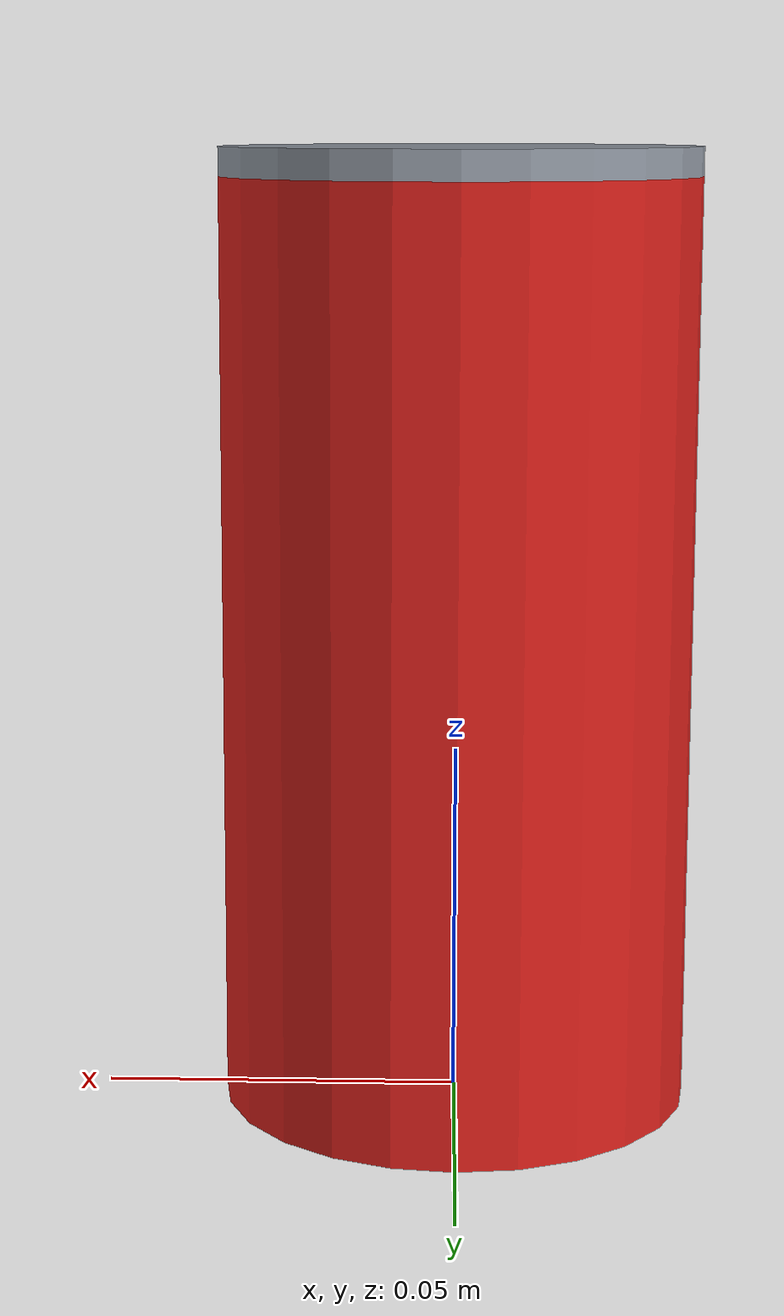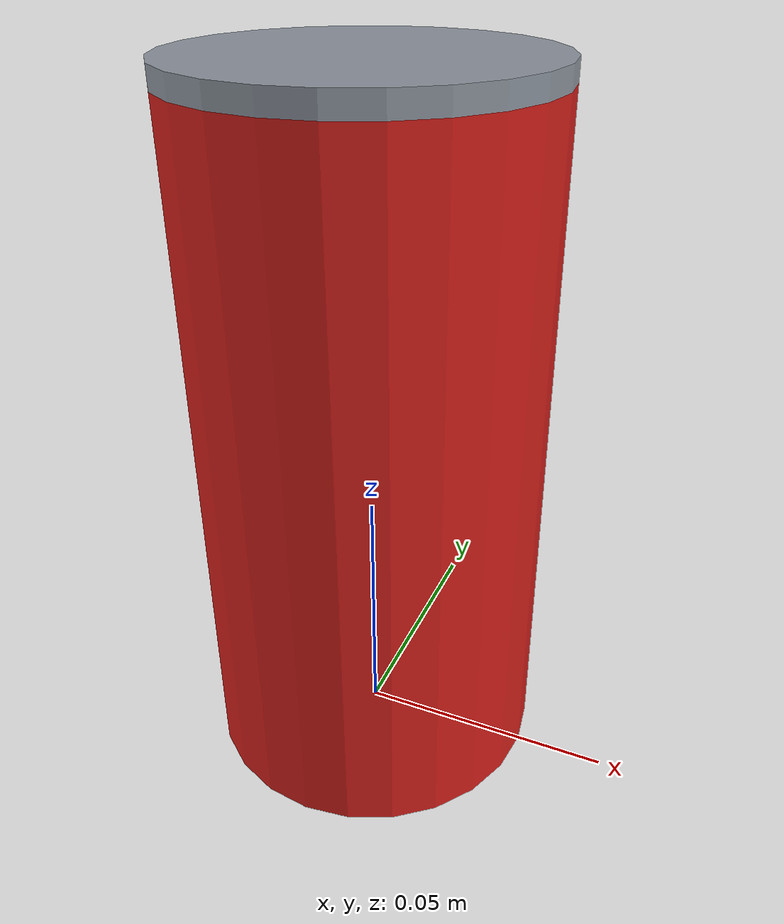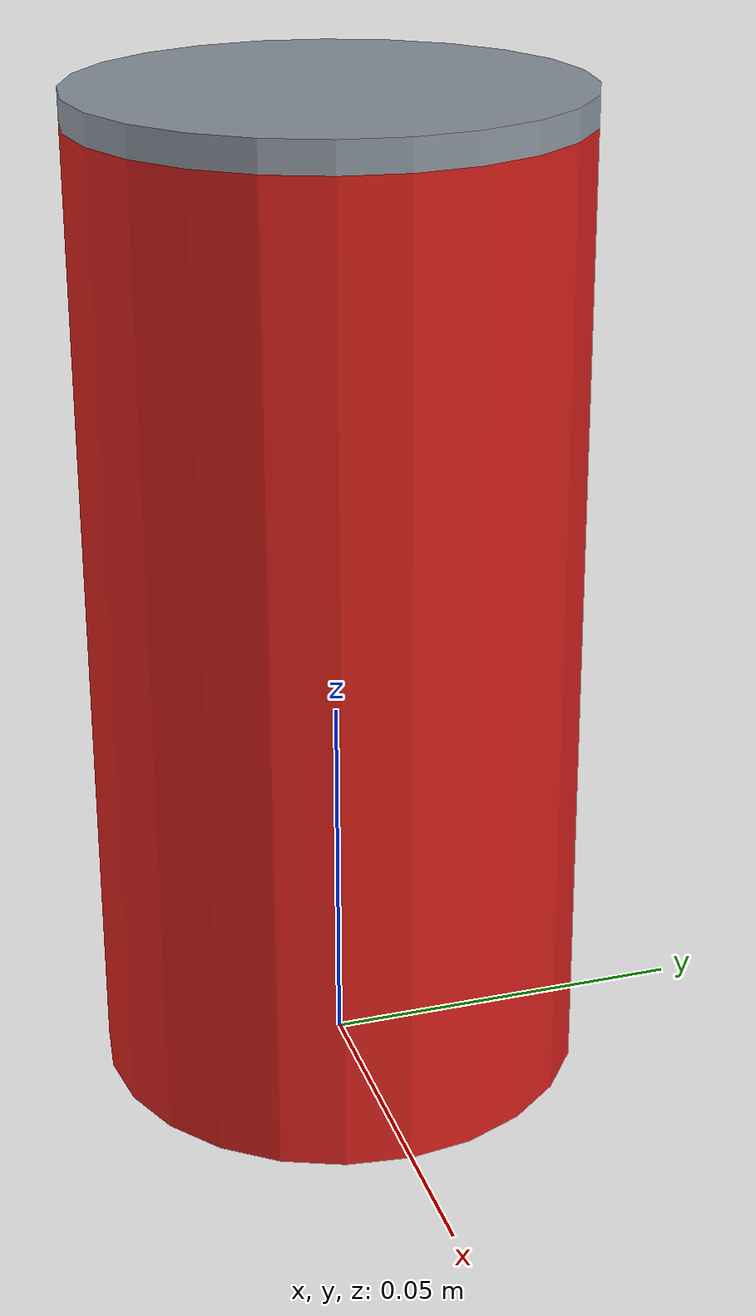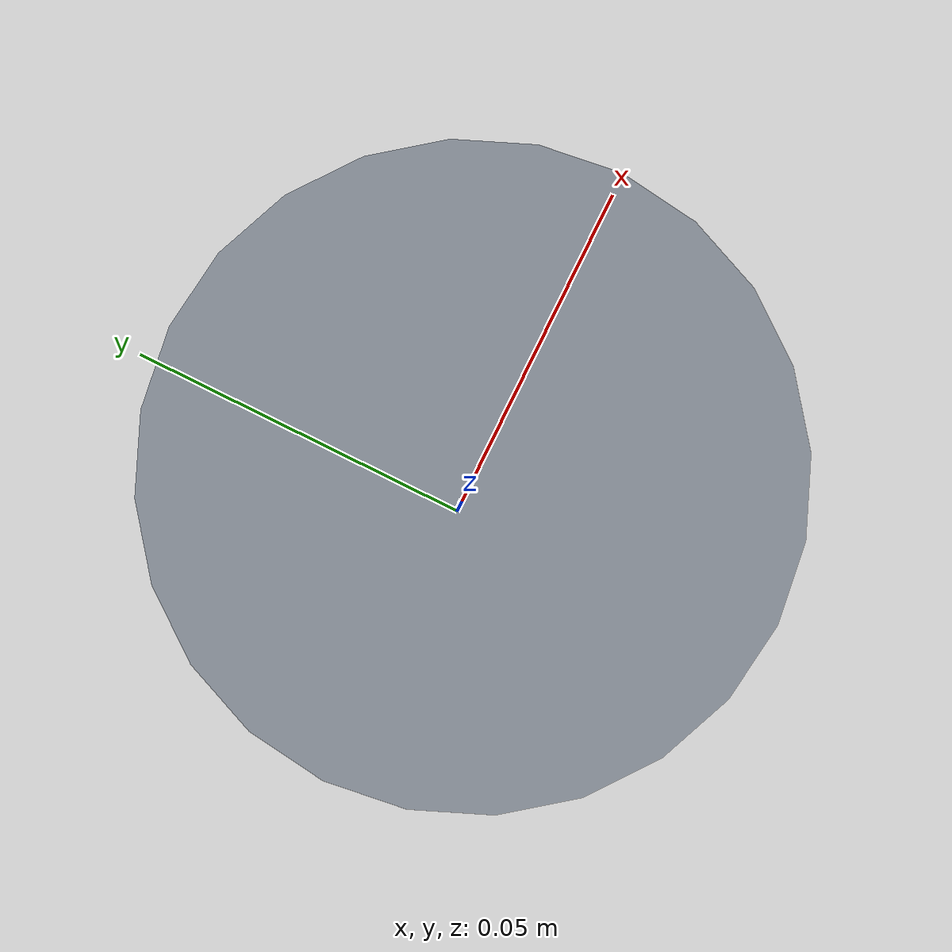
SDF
<?xml version="1.0"?>
<sdf version="1.8">
  <model name="trash_aluminum_can">
    <static>true</static>
    <link name="trash_aluminum_can_link">
      <inertial>
        <mass>0.05</mass>
        <inertia>
          <ixx>0.0002</ixx>
          <ixy>0.0</ixy>
          <ixz>0.0</ixz>
          <iyy>0.0002</iyy>
          <iyz>0.0</iyz>
          <izz>0.0002</izz>
        </inertia>
      </inertial>
      <collision name="trash_aluminum_can_collision">
        <pose>0 0 0.065 0 0 0</pose>
        <geometry>
<cylinder><radius>0.033</radius><length>0.13</length></cylinder>
        </geometry>
      </collision>
    <visual name="can_body">
      <pose>0 0 0.065 0 0 0</pose>
      <geometry>
<cylinder><radius>0.033</radius><length>0.13</length></cylinder>
      </geometry>
      <material>
        <ambient>0.82 0.12 0.10 1</ambient>
        <diffuse>0.82 0.12 0.10 1</diffuse>
        <specular>0.1 0.1 0.1 1</specular>
      </material>
    </visual>
    <visual name="can_top">
      <pose>0 0 0.132 0 0 0</pose>
      <geometry>
<cylinder><radius>0.033</radius><length>0.004</length></cylinder>
      </geometry>
      <material>
        <ambient>0.55 0.58 0.62 1</ambient>
        <diffuse>0.55 0.58 0.62 1</diffuse>
        <specular>0.1 0.1 0.1 1</specular>
      </material>
    </visual>
    </link>
  </model>
</sdf>
